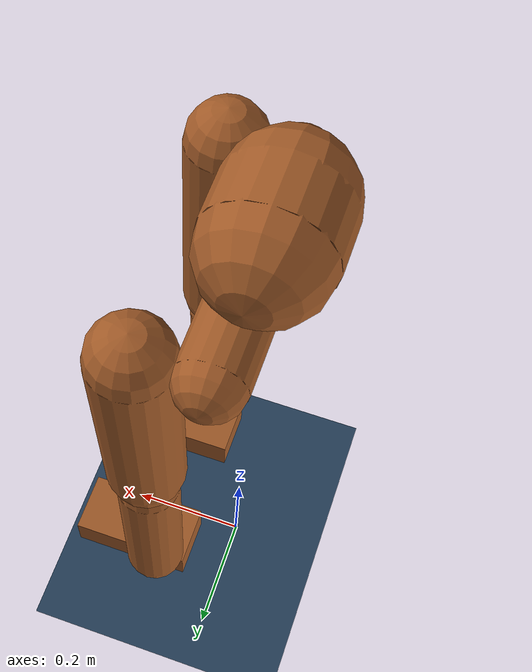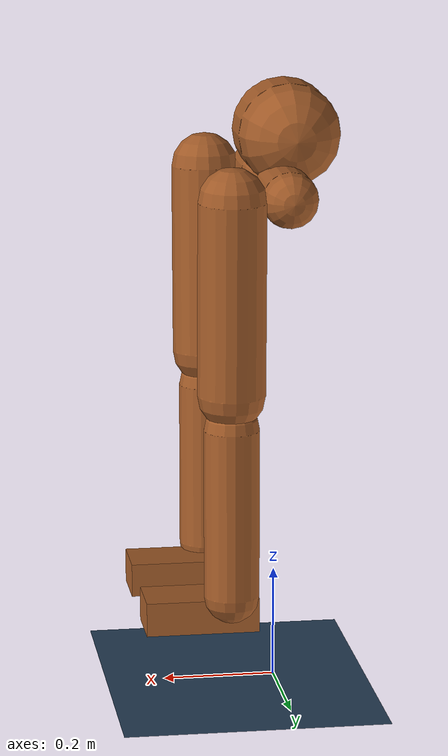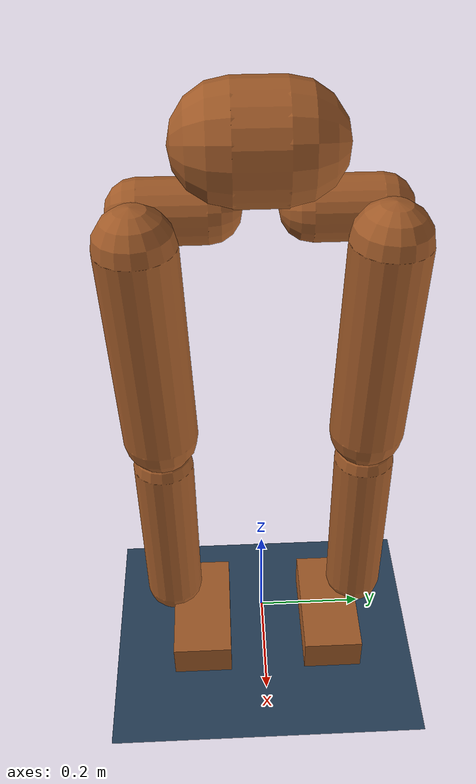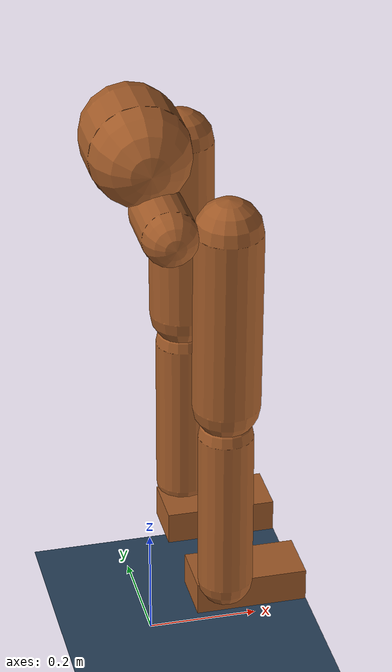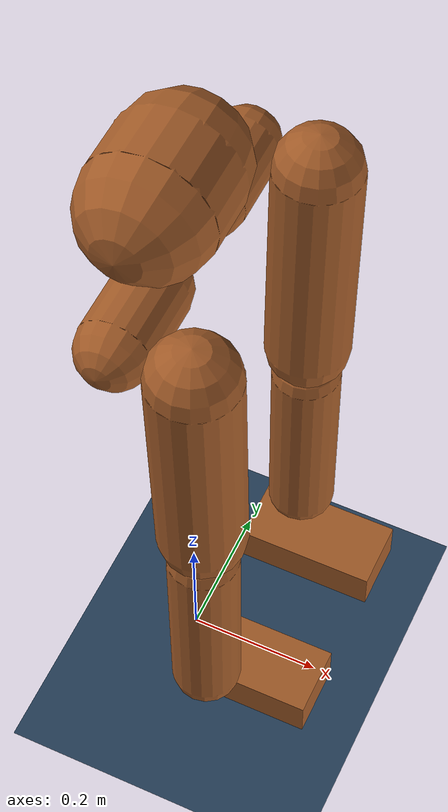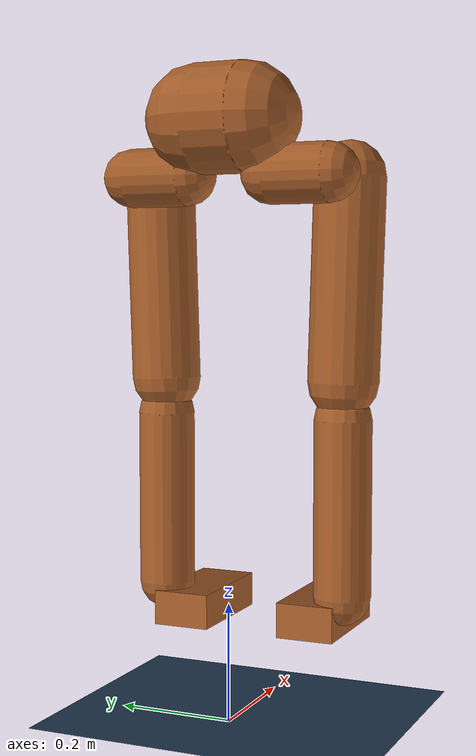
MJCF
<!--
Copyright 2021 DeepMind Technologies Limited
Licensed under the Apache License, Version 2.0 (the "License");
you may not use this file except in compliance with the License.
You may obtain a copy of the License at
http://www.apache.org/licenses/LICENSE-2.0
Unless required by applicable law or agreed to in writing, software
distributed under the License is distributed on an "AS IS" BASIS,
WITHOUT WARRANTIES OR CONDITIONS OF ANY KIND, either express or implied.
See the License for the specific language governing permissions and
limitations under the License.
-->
<mujoco model="MARCH">
  <option timestep="0.005"/>

  <asset>
    <texture type="skybox" builtin="gradient" rgb1=".3 .5 .7" rgb2="0 0 0" width="512" height="512"/>
    <texture name="body" type="cube" builtin="flat" mark="cross" width="127" height="1278"
             rgb1="0.8 0.6 0.4" rgb2="0.8 0.6 0.4" markrgb="1 1 1" random="0.01"/>
    <material name="body" texture="body" texuniform="true" rgba="0.8 0.6 .4 1"/>
    <texture name="grid" type="2d" builtin="checker" width="512" height="512" rgb1=".1 .2 .3" rgb2=".2 .3 .4"/>
    <material name="grid" texture="grid" texrepeat="1 1" texuniform="true" reflectance=".2"/>
  </asset>

  <default>
    <motor ctrlrange="-1 1" ctrllimited="true"/>
    <default class="body">
      <geom type="capsule" condim="1" friction=".7" solimp=".9 .99 .003" solref=".015 1" material="body"/>
      <joint type="hinge" damping=".2" stiffness="1" armature=".01" limited="true" solimplimit="0 .99 .01"/>
      <default class="big_joint">
        <joint damping="5" stiffness="30"/>
        <default class="big_stiff_joint">
          <joint stiffness="50"/>
        </default>
      </default>
    </default>
  </default>

  <visual>
    <map force="0.1" zfar="30"/>
    <rgba haze="0.15 0.25 0.35 1"/>
    <quality shadowsize="4096"/>
    <global offwidth="800" offheight="800"/>
  </visual>

  <worldbody>
    <geom name="floor" size="0 0 .05" type="plane" material="grid" condim="3"/>
    <light name="spotlight" mode="targetbodycom" target="torso"
           diffuse=".8 .8 .8" specular="0.3 0.3 0.3" pos="0 -20 4" cutoff="10"/>
    <body name="torso" pos="0 0 1.0" childclass="body">
      <light name="top" pos="0 0 2" mode="trackcom"/>
      <camera name="diag" pos="1.1 -1.1 0.1" xyaxes="1 1 0 0 1 2" mode="trackcom"/>
      <camera name="side" pos="0 -3 1" xyaxes="1 0 0 0 1 2" mode="trackcom"/>
      <geom name="butt" fromto="
      -.02 -.04 0 -.02 .04 0" size=".09"/>
      <body name="right_hip" pos="0 -.075 -.09">
        <joint name="R_HAA" axis="1 0 0" range="-25 5" class="big_joint"/>
        <geom name="right_hip" fromto="0 0 0 0 -.1 0" size=".049"/>
          <body name="right_thigh" pos=".1 -.1 0">
            <joint name="R_HFE" axis="0 1 0" range="-110 20" class="big_stiff_joint"/>
            <geom name="right_thigh" fromto="0 0 0 0 .01 -.34" size=".06"/>
            <body name="right_shin" pos="0 .01 -.403">
              <joint name="R_KFE" pos="0 0 .02" axis="0 -1 0" range="-160 2"/>
              <geom name="right_shin" fromto="0 0 0 0 0 -.3"  size=".049"/>
              <body name="right_foot" pos="0 0 -.39">
                <joint name="R_ADPF" pos="0 0 .08" axis="0 1 0" range="-50 50" stiffness="6"/>
                <geom name="right_foot" type="box" pos="0.05 .05 0.05" size=".1 .05 .03"/>
              </body>
            </body>
          </body>
      </body>
      <body name="left_hip" pos="0 .075 -.09">
        <joint name="L_HAA" axis="-1 0 0" range="-25 5" class="big_joint"/>
        <geom name="left_hip" fromto="0 0 0 0 .1 0" size=".049"/>
        <body name="left_thigh" pos=".1 .1 0">
          <joint name="L_HFE" axis="0 1 0" range="-110 20" class="big_stiff_joint"/>
          <geom name="left_thigh" fromto="0 0 0 0 -.01 -.34" size=".06"/>
          <body name="left_shin" pos="0 -.01 -.403">
            <joint name="L_KFE" pos="0 0 .02" axis="0 -1 0" range="-160 2"/>
            <geom name="left_shin" fromto="0 0 0 0 0 -.3"  size=".049"/>
            <body name="left_foot" pos="0 0 -.39">
              <joint name="L_ADPF" pos="0 0 .08" axis="0 1 0" range="-50 50" stiffness="6"/>
              <geom name="left_foot" type="box" pos="0.05 -.05 0.05" size=".1 .05 .03"/>
            </body>
          </body>
        </body>
      </body>
    </body>
  </worldbody>
{#    Acuator naming convention vor March achtuators#}
{#    ['left_ankle', 'left_hip_aa', 'left_hip_fe', 'left_knee', 'right_ankle', 'right_hip_aa', 'right_hip_fe', 'right_knee']#}
  <actuator>
    <motor name="right_hip_aa"     gear="40"  joint="R_HAA"/>
    <motor name="right_hip_fe"     gear="120" joint="R_HFE"/>
    <motor name="right_knee"      gear="80"  joint="R_KFE"/>
    <motor name="right_ankle"   gear="20"  joint="R_ADPF"/>
    <motor name="left_hip_aa"      gear="40"  joint="L_HAA"/>
    <motor name="left_hip_fe"      gear="120" joint="L_HFE"/>
    <motor name="left_knee"       gear="80"  joint="L_KFE"/>
    <motor name="left_ankle"    gear="20"  joint="L_ADPF"/>
  </actuator>
</mujoco>
